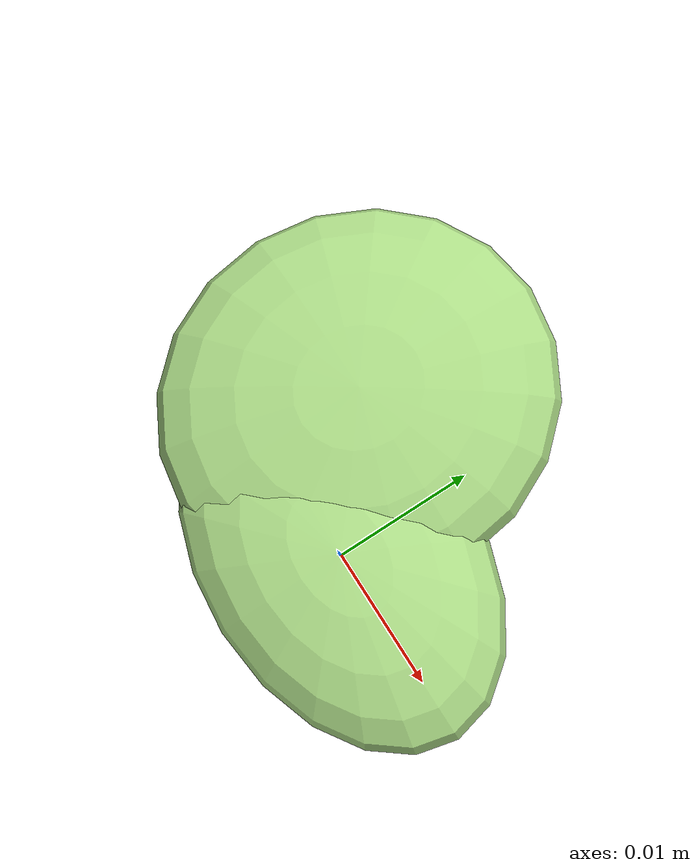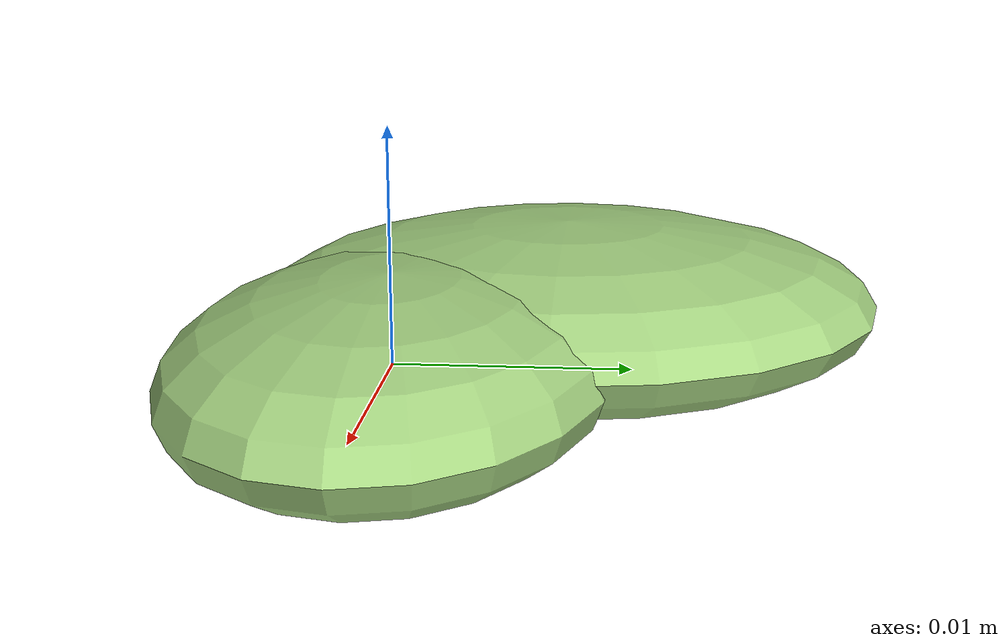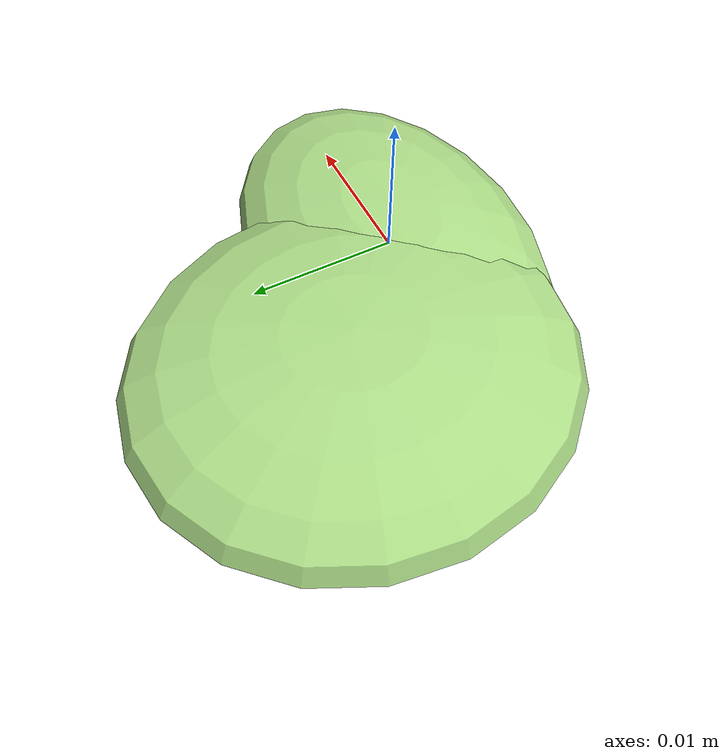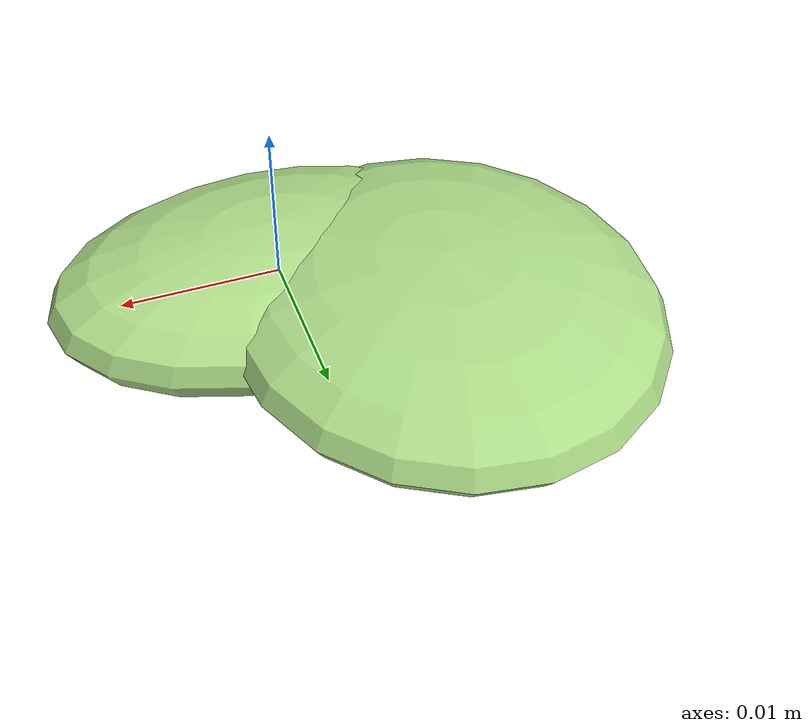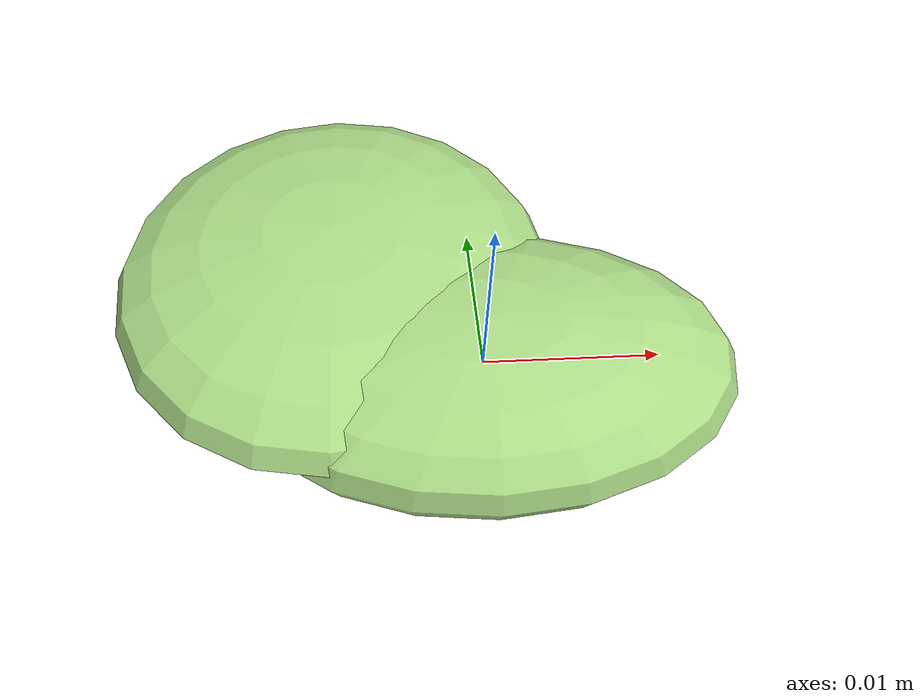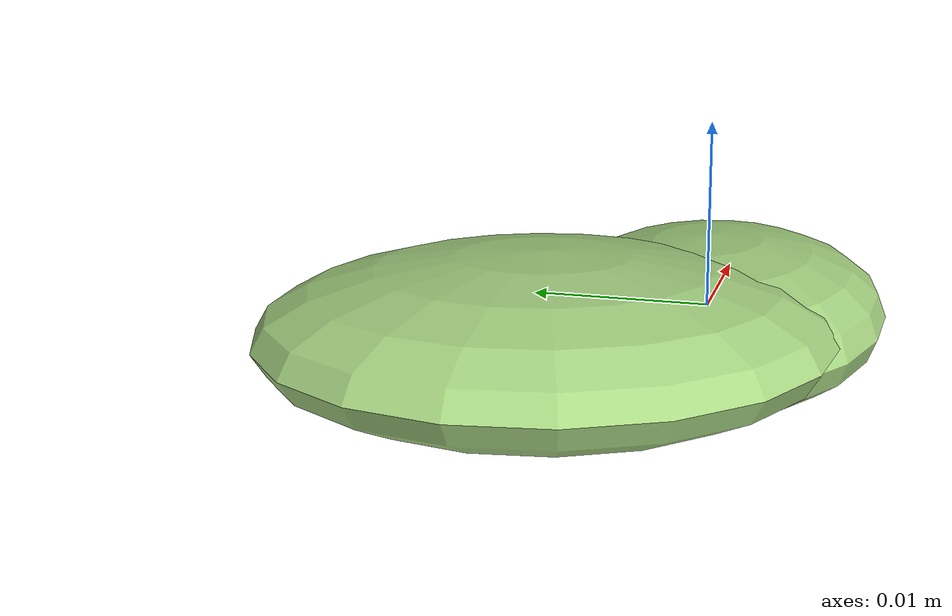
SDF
<?xml version="1.0" ?>
<!-- |    This document was autogenerated by xmacro from data/veggie_template/veggie_base.sdf.xacro  | -->
<!-- |    EDITING THIS FILE BY HAND IS NOT RECOMMENDED                                               | -->
<sdf version="1.8">
	<!-- Parameters -->
	<!-- Base -->
	<!-- Joint 0 -->
	<!-- Link 1 -->
	<!-- Joint 1 -->
	<!-- Link 2 -->
	<!-- Primitives -->
	<!-- All dimensions are half -->
	<!-- Object -->
	<model name="veggie">
		<!-- link0 -->
		<link name="link0">
			<inertial>
				<mass>0.002252078700463576</mass>
				<inertia>
					<ixx>4.751268601158077e-08</ixx>
					<ixy>0</ixy>
					<ixz>0</ixz>
					<iyy>1.0023429613791826e-07</iyy>
					<iyz>0</iyz>
					<izz>1.3376566125215178e-07</izz>
				</inertia>
			</inertial>
			<visual name="link0_visual">
				<pose>0 0 0 0 0 0</pose>
				<geometry>
					<ellipsoid>
						<radii>0.014388079208993518 0.00948503185266311 0.003939601776349656</radii>
					</ellipsoid>
				</geometry>
				<material>
					<ambient>0.659 0.839 0.514 1</ambient>
					<diffuse>0.659 0.839 0.514 1</diffuse>
					<specular>0 0 0 0</specular>
					<emissive>0 0 0 1</emissive>
				</material>
			</visual>
			<collision name="link0_collision">
				<pose>0 0 0 0 0 0 </pose>
				<geometry>
					<ellipsoid>
						<radii>0.014388079208993518 0.00948503185266311 0.003939601776349656</radii>
					</ellipsoid>
				</geometry>
			</collision>
		</link>
		<!-- link1 -->
		<joint name="joint0" type="fixed">
			<pose relative_to="link0">-0.008308901027644325 0.00682297033448547 0.0007024152895411378 0.0 0.0 0.0</pose>
			<parent>link0</parent>
			<child>link1</child>
		</joint>
		<link name="link1">
			<pose relative_to="joint0">0 0 0 0 0 0</pose>
			<inertial>
				<mass>0.002925386079312855</mass>
				<inertia>
					<ixx>1.2538503714138685e-07</ixx>
					<ixy>0</ixy>
					<ixz>0</ixz>
					<iyy>1.091973543810727e-07</iyy>
					<iyz>0</iyz>
					<izz>2.1805588376440655e-07</izz>
				</inertia>
			</inertial>
			<visual name="link1_visual">
				<pose>0 0 0 0 0 0</pose>
				<geometry>
					<ellipsoid>
						<radii>0.013134464331939807 0.014148560136675611 0.0037581053900746105</radii>
					</ellipsoid>
				</geometry>
				<material>
					<ambient>0.659 0.839 0.514 1</ambient>
					<diffuse>0.659 0.839 0.514 1</diffuse>
					<specular>0 0 0 0</specular>
					<emissive>0 0 0 1</emissive>
				</material>
			</visual>
			<collision name="link1_collision">
				<pose>0 0 0 0 0 0 </pose>
				<geometry>
					<ellipsoid>
						<radii>0.013134464331939807 0.014148560136675611 0.0037581053900746105</radii>
					</ellipsoid>
				</geometry>
			</collision>
		</link>
		<!-- link2 -->
	</model>
</sdf>
